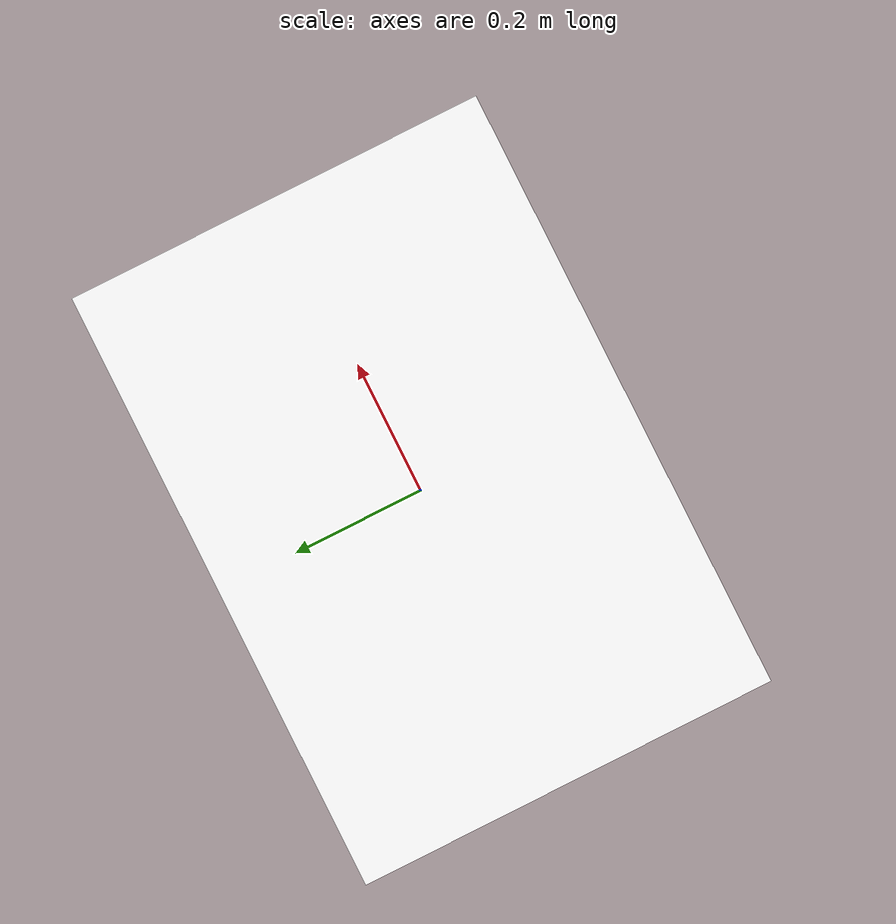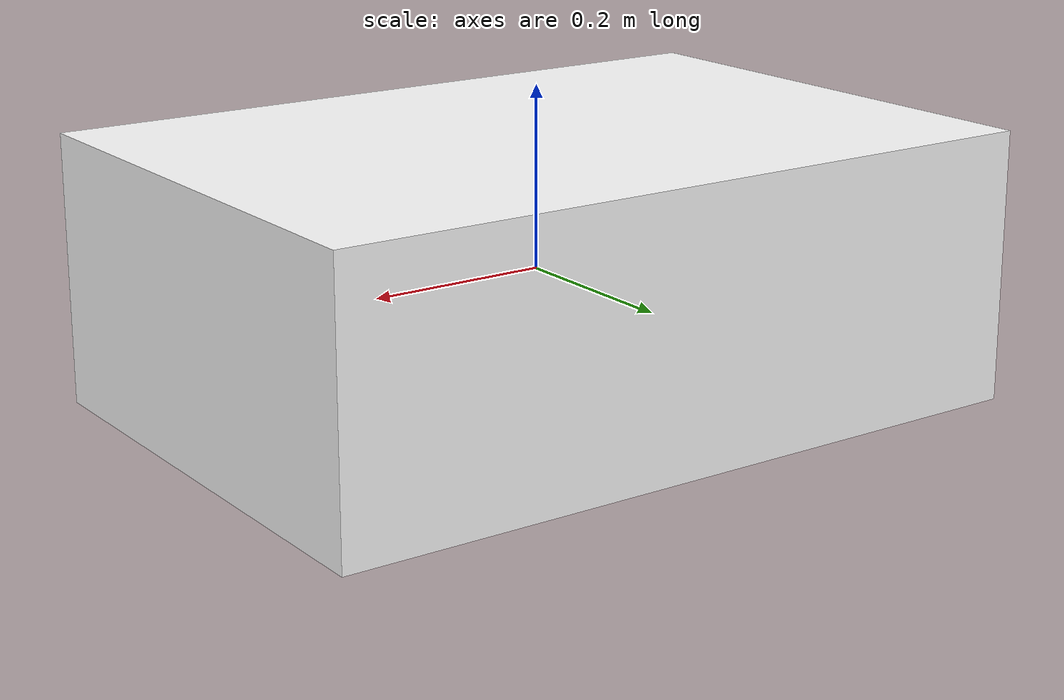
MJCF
<mujoco>
  <compiler angle="radian" assetdir="assets" autolimits="true"/>

  <asset>

    <!-- Textures -->
    <texture type="2d" colorspace="sRGB" name="carton_02_uv" file="carton_02_uv.png"/>

    <!-- Materials -->
    <material name="MI_carton_02" rgba="1 1 1 1" reflectance="0.5" metallic="0.0" roughness="0.5">
      <layer texture="carton_02_uv" role="rgb"/>
    </material>

    <!-- Visual meshes -->
    <mesh class="visual" name="V_carton_02" file="V_carton_02.obj"/>

  </asset>

  <default>
      <default class="visual">
        <geom type="mesh" contype="0" conaffinity="0" group="2" density="0"/>
      </default>
  </default>

  <worldbody>

    <body name="B_carton_02" pos="0.0 0.0 0.0" quat="1.0 0.0 0.0 0.0">
      <geom class="visual" mesh="V_carton_02" pos="0.0 0.0 0.0" quat="1.0 0.0 0.0 0.0" material="MI_carton_02"/>
    </body>
  </worldbody>

</mujoco>
